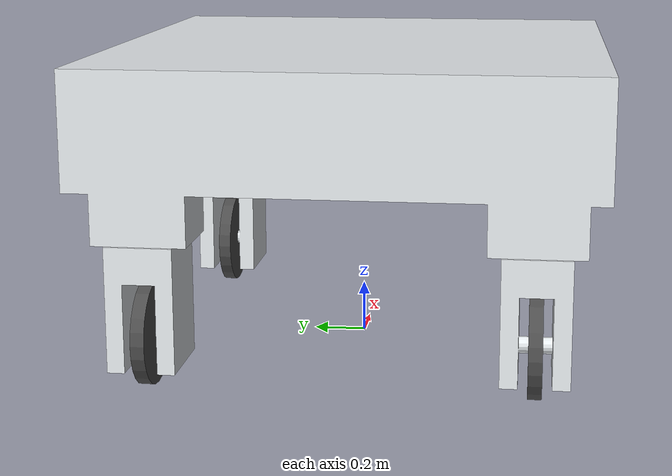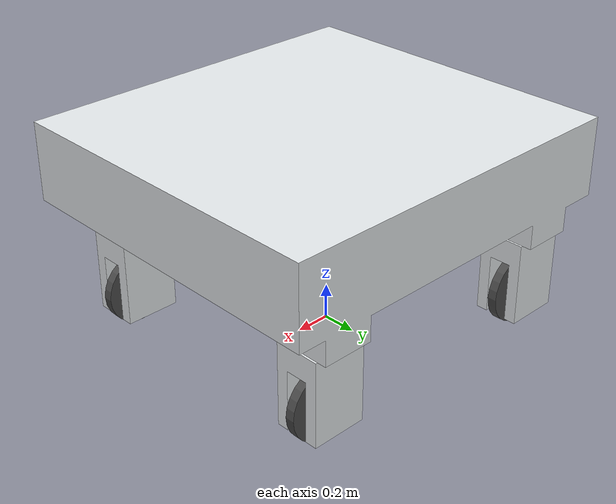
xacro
<?xml version="1.0" encoding="utf-8"?>
<robot
  name="robot_urdf">
  <link
    name="base_link">

  </link>
  <link
    name="chassis_link">
    <inertial>
      <origin
        xyz="-0.0057618 8.8769E-15 -0.033998"
        rpy="0 0 0" />
      <mass
        value="32.713" />
      <inertia
        ixx="14.677"
        ixy="-1.0477E-13"
        ixz="-0.068414"
        iyy="16.371"
        iyz="-1.4749E-14"
        izz="28.033" />
    </inertial>
    <visual>
      <origin
        xyz="0 0 0"
        rpy="0 0 0" />
      <geometry>
        <mesh
          filename="package://robot_urdf/meshes/chassis_link.STL" />
      </geometry>
      <material
        name="">
        <color
          rgba="0.89804 0.91765 0.92941 1" />
      </material>
    </visual>
    <collision>
      <origin
        xyz="0 0 0"
        rpy="0 0 0" />
      <geometry>
        <mesh
          filename="package://robot_urdf/meshes/chassis_link.STL" />
      </geometry>
    </collision>
  </link>
  <joint
    name="chassis_joint"
    type="fixed">
    <origin
      xyz="0.067275 0 0.96832"
      rpy="0 0 0" />
    <parent
      link="base_link" />
    <child
      link="chassis_link" />
    <axis
      xyz="0 0 0" />
    <limit
      lower="0"
      upper="0"
      effort="100"
      velocity="10" />
    <dynamics
      damping="0.1"
      friction="0.1" />
  </joint>
  <link
    name="wheel_holder_link_lf">
    <inertial>
      <origin
        xyz="1.1102E-16 -2.2204E-16 -0.2296"
        rpy="0 0 0" />
      <mass
        value="4.2419" />
      <inertia
        ixx="0.1287"
        ixy="-7.3591E-17"
        ixz="-7.8137E-18"
        iyy="0.13522"
        iyz="1.4281E-16"
        izz="0.079121" />
    </inertial>
    <visual>
      <origin
        xyz="0 0 0"
        rpy="0 0 0" />
      <geometry>
        <mesh
          filename="package://robot_urdf/meshes/wheel_holder_link_lf.STL" />
      </geometry>
      <material
        name="">
        <color
          rgba="0.89804 0.91765 0.92941 1" />
      </material>
    </visual>
    <collision>
      <origin
        xyz="0 0 0"
        rpy="0 0 0" />
      <geometry>
        <mesh
          filename="package://robot_urdf/meshes/wheel_holder_link_lf.STL" />
      </geometry>
    </collision>
  </link>
  <joint
    name="wheel_holder_joint_lf"
    type="continuous">
    <origin
      xyz="0.65801 0.7012 -0.42432"
      rpy="0 0 0" />
    <parent
      link="chassis_link" />
    <child
      link="wheel_holder_link_lf" />
    <axis
      xyz="0 0 1" />
  </joint>
  <link
    name="wheel_link_lf">
    <inertial>
      <origin
        xyz="0 -1.1102E-16 0"
        rpy="0 0 0" />
      <mass
        value="5.9118" />
      <inertia
        ixx="0.056856"
        ixy="3.4492E-18"
        ixz="-1.0892E-32"
        iyy="0.11125"
        iyz="9.227E-19"
        izz="0.056856" />
    </inertial>
    <visual>
      <origin
        xyz="0 0 0"
        rpy="1.570796 1.570796 0" />
      <geometry>
        <cylinder radius="0.194" length="0.05" />
      </geometry>
      <material
        name="">
        <color
          rgba="0.29804 0.29804 0.29804 1" />
      </material>
    </visual>
    <collision>
      <origin
        xyz="0 0 0"
        rpy="1.570796 1.570796 0" />
      <geometry>
        <cylinder radius="0.194" length="0.05" />
      </geometry>
    </collision>
  </link>
  <joint
    name="wheel_joint_lf"
    type="continuous">
    <origin
      xyz="0 0 -0.35"
      rpy="0 0 0" />
    <parent
      link="wheel_holder_link_lf" />
    <child
      link="wheel_link_lf" />
    <axis
      xyz="0 1 0" />
    <limit
      effort="100"
      velocity="10" />
  </joint>
  <link
    name="wheel_holder_link_lb">
    <inertial>
      <origin
        xyz="1.1102E-16 -1.1102E-16 -0.2296"
        rpy="0 0 0" />
      <mass
        value="4.2419" />
      <inertia
        ixx="0.1287"
        ixy="-3.4869E-17"
        ixz="-6.2384E-17"
        iyy="0.13522"
        iyz="2.0849E-16"
        izz="0.079121" />
    </inertial>
    <visual>
      <origin
        xyz="0 0 0"
        rpy="0 0 0" />
      <geometry>
        <mesh
          filename="package://robot_urdf/meshes/wheel_holder_link_lb.STL" />
      </geometry>
      <material
        name="">
        <color
          rgba="0.89804 0.91765 0.92941 1" />
      </material>
    </visual>
    <collision>
      <origin
        xyz="0 0 0"
        rpy="0 0 0" />
      <geometry>
        <mesh
          filename="package://robot_urdf/meshes/wheel_holder_link_lb.STL" />
      </geometry>
    </collision>
  </link>
  <joint
    name="wheel_holder_joint_lb"
    type="continuous">
    <origin
      xyz="-0.79256 0.7012 -0.42432"
      rpy="0 0 0" />
    <parent
      link="chassis_link" />
    <child
      link="wheel_holder_link_lb" />
    <axis
      xyz="0 0 1" />
  </joint>
  <link
    name="wheel_link_lb">
    <inertial>
      <origin
        xyz="0 -1.1102E-16 0"
        rpy="0 0 0" />
      <mass
        value="5.9118" />
      <inertia
        ixx="0.056856"
        ixy="3.4492E-18"
        ixz="-1.0892E-32"
        iyy="0.11125"
        iyz="9.227E-19"
        izz="0.056856" />
    </inertial>
    <visual>
      <origin
        xyz="0 0 0"
        rpy="1.570796 1.570796 0" />
      <geometry>
        <cylinder radius="0.194" length="0.05" />
      </geometry>
      <material
        name="">
        <color
          rgba="0.29804 0.29804 0.29804 1" />
      </material>
    </visual>
    <collision>
      <origin
        xyz="0 0 0"
        rpy="1.570796 1.570796 0" />
      <geometry>
        <cylinder radius="0.194" length="0.05" />
      </geometry>
    </collision>
  </link>
  <joint
    name="wheel_joint_lb"
    type="continuous">
    <origin
      xyz="0 0 -0.35"
      rpy="0 0 0" />
    <parent
      link="wheel_holder_link_lb" />
    <child
      link="wheel_link_lb" />
    <axis
      xyz="0 1 0" />
    <limit
      effort="100"
      velocity="10" />
  </joint>
  <link
    name="wheel_holder_link_rb">
    <inertial>
      <origin
        xyz="3.3307E-16 -2.2204E-16 -0.2296"
        rpy="0 0 0" />
      <mass
        value="4.2419" />
      <inertia
        ixx="0.1287"
        ixy="-1.1733E-16"
        ixz="-2.6966E-16"
        iyy="0.13522"
        iyz="1.0014E-16"
        izz="0.079121" />
    </inertial>
    <visual>
      <origin
        xyz="0 0 0"
        rpy="0 0 0" />
      <geometry>
        <mesh
          filename="package://robot_urdf/meshes/wheel_holder_link_rb.STL" />
      </geometry>
      <material
        name="">
        <color
          rgba="0.89804 0.91765 0.92941 1" />
      </material>
    </visual>
    <collision>
      <origin
        xyz="0 0 0"
        rpy="0 0 0" />
      <geometry>
        <mesh
          filename="package://robot_urdf/meshes/wheel_holder_link_rb.STL" />
      </geometry>
    </collision>
  </link>
  <joint
    name="wheel_holder_joint_rb"
    type="continuous">
    <origin
      xyz="-0.79256 -0.7012 -0.42432"
      rpy="0 0 0" />
    <parent
      link="chassis_link" />
    <child
      link="wheel_holder_link_rb" />
    <axis
      xyz="0 0 1" />
  </joint>
  <link
    name="wheel_link_rb">
    <inertial>
      <origin
        xyz="0 -1.1102E-16 0"
        rpy="0 0 0" />
      <mass
        value="5.9118" />
      <inertia
        ixx="0.056856"
        ixy="3.4492E-18"
        ixz="-1.0892E-32"
        iyy="0.11125"
        iyz="9.227E-19"
        izz="0.056856" />
    </inertial>
    <visual>
      <origin
        xyz="0 0 0"
        rpy="1.570796 1.570796 0" />
      <geometry>
        <cylinder radius="0.194" length="0.05" />
      </geometry>
      <material
        name="">
        <color
          rgba="0.29804 0.29804 0.29804 1" />
      </material>
    </visual>
    <collision>
      <origin
        xyz="0 0 0"
        rpy="1.570796 1.570796 0" />
      <geometry>
        <cylinder radius="0.194" length="0.05" />
      </geometry>
    </collision>
  </link>
  <joint
    name="wheel_joint_rb"
    type="continuous">
    <origin
      xyz="0 0 -0.35"
      rpy="0 0 0" />
    <parent
      link="wheel_holder_link_rb" />
    <child
      link="wheel_link_rb" />
    <axis
      xyz="0 1 0" />
    <limit
      effort="100"
      velocity="10" />
  </joint>
  <link
    name="wheel_holder_link_rf">
    <inertial>
      <origin
        xyz="0 -2.2204E-16 -0.2296"
        rpy="0 0 0" />
      <mass
        value="4.2419" />
      <inertia
        ixx="0.1287"
        ixy="-7.3591E-17"
        ixz="-7.9202E-18"
        iyy="0.13522"
        iyz="1.4433E-16"
        izz="0.079121" />
    </inertial>
    <visual>
      <origin
        xyz="0 0 0"
        rpy="0 0 0" />
      <geometry>
        <mesh
          filename="package://robot_urdf/meshes/wheel_holder_link_rf.STL" />
      </geometry>
      <material
        name="">
        <color
          rgba="0.89804 0.91765 0.92941 1" />
      </material>
    </visual>
    <collision>
      <origin
        xyz="0 0 0"
        rpy="0 0 0" />
      <geometry>
        <mesh
          filename="package://robot_urdf/meshes/wheel_holder_link_rf.STL" />
      </geometry>
    </collision>
  </link>
  <joint
    name="wheel_holder_joint_rf"
    type="continuous">
    <origin
      xyz="0.65801 -0.7012 -0.42432"
      rpy="0 0 0" />
    <parent
      link="chassis_link" />
    <child
      link="wheel_holder_link_rf" />
    <axis
      xyz="0 0 1" />
  </joint>
  <link
    name="wheel_link_rf">
    <inertial>
      <origin
        xyz="0 -1.1102E-16 0"
        rpy="0 0 0" />
      <mass
        value="5.9118" />
      <inertia
        ixx="0.056856"
        ixy="3.4492E-18"
        ixz="-1.0892E-32"
        iyy="0.11125"
        iyz="9.227E-19"
        izz="0.056856" />
    </inertial>
    <visual>
      <origin
        xyz="0 0 0"
        rpy="1.570796 1.570796 0" />
      <geometry>
        <cylinder radius="0.194" length="0.05" />
      </geometry>
      <material
        name="">
        <color
          rgba="0.29804 0.29804 0.29804 1" />
      </material>
    </visual>
    <collision>
      <origin
        xyz="0 0 0"
        rpy="1.570796 1.570796 0" />
      <geometry>
        <cylinder radius="0.194" length="0.05" />
      </geometry>
    </collision>
  </link>
  <joint
    name="wheel_joint_rf"
    type="continuous">
    <origin
      xyz="0 0 -0.35"
      rpy="0 0 0" />
    <parent
      link="wheel_holder_link_rf" />
    <child
      link="wheel_link_rf" />
    <axis
      xyz="0 1 0" />
    <limit
      effort="100"
      velocity="10" />
  </joint>

  <link
    name="depth_link_r">
  </link>

  <joint
    name="depth_joint_r"
    type="fixed">
    <origin
      xyz="1.017 -0.45 -0.21645"
      rpy="0 0.7853982 0.2618" />
    <parent
      link="chassis_link" />
    <child
      link="depth_link_r" />
    <axis
      xyz="0 0 0" />
  </joint>

  <link
    name="depth_link_l">
  </link>

  <joint
    name="depth_joint_l"
    type="fixed">
    <origin
      xyz="1.017 0.45 -0.21645"
      rpy="0 0.7853982 -0.2618" />
    <parent
      link="chassis_link" />
    <child
      link="depth_link_l" />
    <axis
      xyz="0 0 0" />
  </joint>

  <ros2_control name="IgnitionSystem" type="system">

    <hardware>
      <plugin>ign_ros2_control/IgnitionSystem</plugin>
    </hardware>

    <joint name="wheel_joint_lf">
      <command_interface name="velocity" />
      <state_interface name="position" />
      <state_interface name="velocity" />
    </joint>

    <joint name="wheel_joint_lb">
      <command_interface name="velocity" />
      <state_interface name="position" />
      <state_interface name="velocity" />
    </joint>

    <joint name="wheel_joint_rb">
      <command_interface name="velocity" />
      <state_interface name="position" />
      <state_interface name="velocity" />
    </joint>

    <joint name="wheel_joint_rf">
      <command_interface name="velocity" />
      <state_interface name="position" />
      <state_interface name="velocity" />
    </joint>

    <joint name="wheel_holder_joint_lf">
      <state_interface name="position" />
      <state_interface name="velocity" />
      <command_interface name="position">
        <param name="p">100.0</param>
        <param name="i">0.05</param>
        <param name="d">1.0</param>
        <param name="max">100.0</param>
      </command_interface>
    </joint>

    <joint name="wheel_holder_joint_rf">
      <state_interface name="position" />
      <state_interface name="velocity" />
      <command_interface name="position">
        <param name="p">100.0</param>
        <param name="i">0.05</param>
        <param name="d">1.0</param>
        <param name="max">100.0</param>
      </command_interface>
    </joint>

    <joint name="wheel_holder_joint_lb">
      <state_interface name="position" />
      <state_interface name="velocity" />
      <command_interface name="position">
        <param name="p">100.0</param>
        <param name="i">0.05</param>
        <param name="d">1.0</param>
        <param name="max">100.0</param>
      </command_interface>
    </joint>

    <joint name="wheel_holder_joint_rb">
      <state_interface name="position" />
      <state_interface name="velocity" />
      <command_interface name="position">
        <param name="p">100.0</param>
        <param name="i">0.05</param>
        <param name="d">1.0</param>
        <param name="max">100.0</param>
      </command_interface>
    </joint>

  </ros2_control>

  <gazebo>

    <plugin filename="libign_ros2_control-system.so"
      name="ign_ros2_control::IgnitionROS2ControlPlugin">
      <robot_param>robot_description</robot_param>
      <robot_param_node>robot_state_publisher</robot_param_node>
      <parameters>$(find robot_urdf)/config/swerve_drive.yaml</parameters>
    </plugin>

  </gazebo>

  <gazebo reference="wheel_link_lf">
    <mu1>1.2</mu1>
    <mu2>1.2</mu2>
    <kp>1000000.0</kp>
    <kd>100.0</kd>
  </gazebo>

  <gazebo reference="wheel_link_lb">
    <mu1>1.2</mu1>
    <mu2>1.2</mu2>
    <kp>1000000.0</kp>
    <kd>100.0</kd>
  </gazebo>

  <gazebo reference="wheel_link_rb">
    <mu1>1.2</mu1>
    <mu2>1.2</mu2>
    <kp>1000000.0</kp>
    <kd>100.0</kd>
  </gazebo>

  <gazebo reference="wheel_link_rf">
    <mu1>1.2</mu1>
    <mu2>1.2</mu2>
    <kp>1000000.0</kp>
    <kd>100.0</kd>
  </gazebo>

  <gazebo reference="chassis_link">
    <material>Gazebo/Orange</material>
  </gazebo>

  <gazebo reference="depth_link_l">
    <sensor name="depth_sensor_l" type="gpu_lidar">
      <ignition_frame_id>depth_link_l</ignition_frame_id>
      <topic>lidar_l</topic>
      <update_rate>10</update_rate>
      <always_on>true</always_on>
      <visualize>false</visualize> <!-- Keep false to save resources unless debugging rays -->
      <lidar>
        <scan>
          <horizontal>
            <samples>360</samples>
            <resolution>1</resolution>
            <min_angle>-0.50705</min_angle>
            <max_angle>0.50705</max_angle>
          </horizontal>
          <vertical>
            <samples>100</samples> <!-- 16 vertical slices provides a good 3D point cloud -->
            <resolution>1</resolution>
            <min_angle>-0.39445</min_angle> <!-- -15 degrees -->
            <max_angle>0.39445</max_angle>  <!-- +15 degrees -->
          </vertical>
        </scan>
        <range>
          <min>0.1</min>
          <max>15.0</max> <!-- 15 meter range is typical -->
          <resolution>0.01</resolution>
        </range>
        <noise>
          <type>gaussian</type>
          <mean>0.0</mean>
          <stddev>0.01</stddev>
        </noise>
      </lidar>
    </sensor>
  </gazebo>

  <gazebo reference="depth_link_r">
    <sensor name="depth_sensor_r" type="gpu_lidar">
      <ignition_frame_id>depth_link_r</ignition_frame_id>
      <topic>lidar_r</topic>
      <update_rate>10</update_rate>
      <always_on>true</always_on>
      <visualize>false</visualize>
      <lidar>
        <scan>
          <horizontal>
            <samples>360</samples>
            <resolution>1</resolution>
            <min_angle>-0.50705</min_angle>
            <max_angle>0.50705</max_angle>
          </horizontal>
          <vertical>
            <samples>100</samples>
            <resolution>1</resolution>
            <min_angle>-0.39445</min_angle>
            <max_angle>0.39445</max_angle>
          </vertical>
        </scan>
        <range>
          <min>0.1</min>
          <max>15.0</max>
          <resolution>0.01</resolution>
        </range>
        <noise>
          <type>gaussian</type>
          <mean>0.0</mean>
          <stddev>0.01</stddev>
        </noise>
      </lidar>
    </sensor>
  </gazebo>
</robot>
